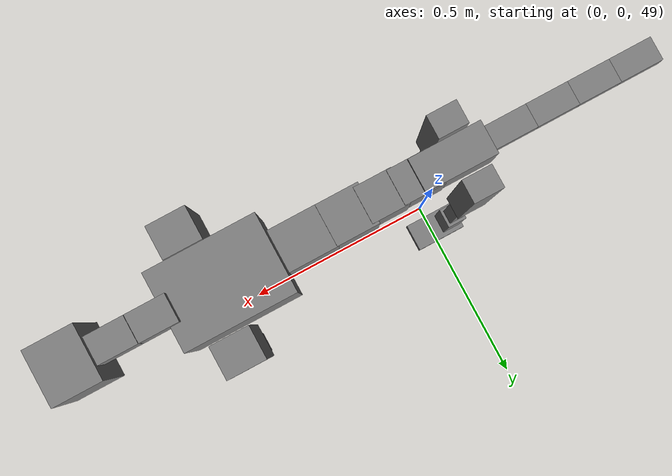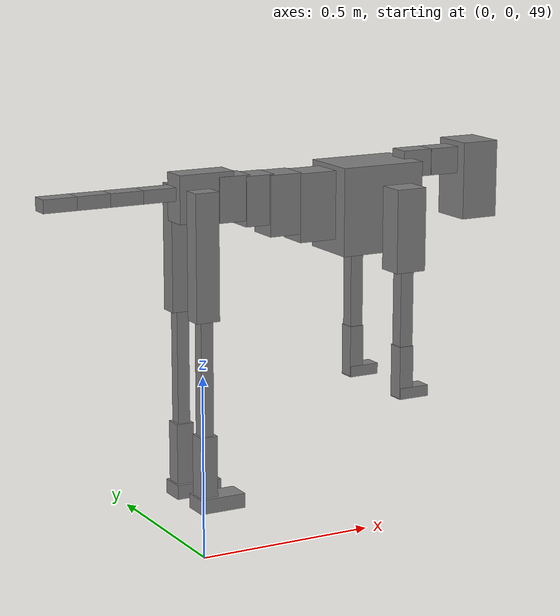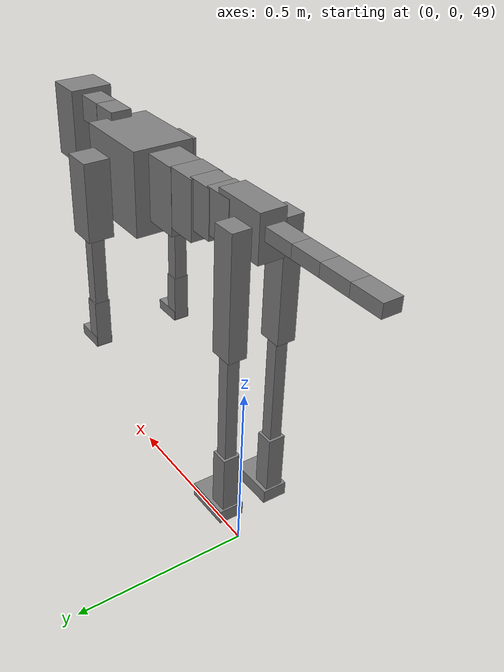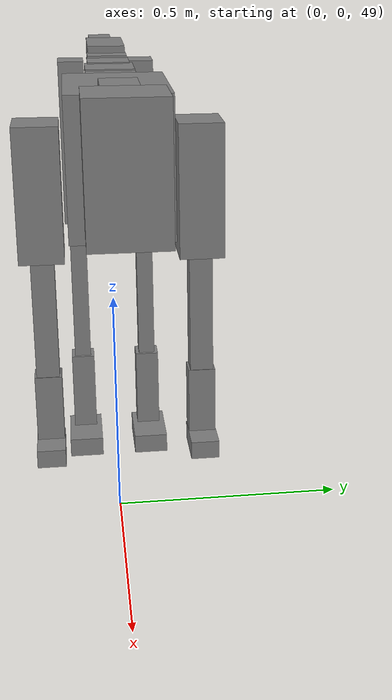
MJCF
<mujoco model="dog">

    <default>
        <joint armature="0.02" stiffness="1" damping="0.2" limited="true"/>
        <geom condim="3" friction="1 0.05 0.05" margin="0.01"/>
        <motor ctrllimited="true" ctrlrange="-1.0 1.0" forcelimited="true" gear="50"/>
    </default>

    <compiler inertiafromgeom="true" angle="radian"/>

    <option timestep="0.016" iterations="50" tolerance="1e-10" solver="Newton" jacobian="dense" cone="pyramidal"/>

    <size nconmax="20000" njmax="60000" nstack="5000000"/>
    <visual>
        <map force="0.1" zfar="30"/>
        <rgba haze="0.15 0.25 0.35 1"/>
        <quality shadowsize="2048"/>
        <global offwidth="800" offheight="800"/>
    </visual>

    <asset>
        <texture type="skybox" builtin="gradient" rgb1="0.3 0.5 0.7" rgb2="0 0 0" width="512" height="512"/>
        <texture name="texplane" type="2d" builtin="checker" rgb1=".2 .3 .4" rgb2=".1 0.15 0.2" width="512" height="512"
                 mark="cross" markrgb=".8 .8 .8"/>
        <texture name="texgeom" type="cube" builtin="flat" mark="cross" width="127" height="1278" rgb1="0.8 0.6 0.4"
                 rgb2="0.8 0.6 0.4" markrgb="1 1 1" random="0.01"/>

        <material name="matplane" reflectance="0.3" texture="texplane" texrepeat="1 1" texuniform="true"/>
        <material name="matgeom" texture="texgeom" texuniform="true" rgba="0.8 0.6 .4 1"/>
    </asset>

    <worldbody>
        <geom name="floor" pos="0 0 0" size="0 0 .25" type="plane" material="matplane" condim="3"/>

        <light directional="false" diffuse=".2 .2 .2" specular="0 0 0" pos="0 0 5" dir="0 0 -1" castshadow="false"/>
        <light mode="targetbodycom" target="torso" directional="false" diffuse=".8 .8 .8" specular="0.3 0.3 0.3"
               pos="0 0 4.0" dir="0 0 -1"/>

        <body name="root" pos="0 0 50">
            <freejoint name="root_1"/>
            <geom type="box" pos="0 0 -0.02" size="0.0774  0.0358  0.063" density="2030"/>

            <body name="spine1" pos="0.054 0 0">
                <joint name="spine1_y" axis="0 1 0" range="0 0.7" limited="true"/>
                <geom type="box" pos="0.02375 0 -0.03" size="0.04375  0.0375  0.05985" density="2030"/>

                <body name="spine2" pos="0.0612 0 0">
                    <joint name="spine2_y" axis="0 1 0" range="-0.15 0.15" limited="true"/>
                    <geom type="box" pos="0.03555  0  -0.04" size="0.04055  0.039  0.06615" density="2030"/>

                    <body name="spine3" pos="0.0730 0 0">
                        <joint name="spine3_y" axis="0 1 0" range="-0.15 0.15" limited="true"/>
                        <geom type="box" pos="0.03555  0  -0.057" size="0.04555  0.0445  0.081" density="2030"/>

                        <body name="spine4" pos="0.0780 0 0">
                            <joint name="spine4_y" axis="0 1 0" range="-0.15 0.15" limited="true"/>
                            <geom type="box" pos="0.05265  0  -0.07" size="0.05265  0.045  0.09135" density="2030"/>

                            <body name="torso" pos="0.1082 0 0">
                                <joint name="torso_y" axis="0 1 0" range="-0.15 0.15" limited="true"/>
                                <geom type="box" pos="0.11925  0  -0.085" size="0.11925  0.085  0.11745"
                                      density="2030"/>

                                <body name="neck1" pos="0.2160  0   0.0180">
                                    <joint name="neck1_y" axis="0 1 0" range="-1.2  -1" limited="true"/>
                                    <geom type="box" pos="0.0423  0  0" size="0.0423  0.03  0.036" density="2325"/>

                                    <body name="neck2" pos="0.0853  0  0">
                                        <joint name="neck2_y" axis="0 1 0" range="0.1  0" limited="true"/>
                                        <geom type="box" pos="0.0423  0  0" size="0.0423  0.03  0.036" density="2325"/>

                                        <body name="head" pos="0.0853  0  0">
                                            <joint name="head_y" axis="0 1 0" range="-0.3  -0.2" limited="true"/>
                                            <geom type="box" pos="0.0531  0  -0.055" size="0.0531  0.06  0.1044"
                                                  density="4030"/>

                                        </body>
                                    </body>
                                </body>

                                <body name="front_shoulder" pos="0.156  0   -0.0480">
                                    <joint name="front_shoulder_y" axis="0 1 0" range="-1 1.5" limited="true"/>
                                    <geom type="box" pos="0 0.13 -0.0847" size="0.0432  0.0369  0.1113" density="1158"/>
                                    <geom type="box" pos="0 -0.13 -0.0847" size="0.0432  0.0369  0.1113"
                                          density="1158"/>

                                    <body name="front_elbow" pos="0  0  -0.1693">
                                        <joint name="front_elbow_y" axis="0 1 0" range="-2 0" limited="true"/>
                                        <geom type="box" pos="0 0.13 -0.1222" size="0.0189  0.0194  0.1222"
                                              density="1081"/>
                                        <geom type="box" pos="0 -0.13 -0.1222" size="0.0189  0.0194  0.1222"
                                              density="1081"/>

                                        <body name="front_wrist" pos="0  0  -0.2445">
                                            <joint name="front_wrist_y" axis="0 1 0" range="-0.2 0" limited="true"/>
                                            <geom type="box" pos="0 0.13 -0.0578" size="0.0204  0.0227  0.0709"
                                                  density="1664"/>
                                            <geom type="box" pos="0 -0.13 -0.0578" size="0.0204  0.0227  0.0709"
                                                  density="1664"/>

                                            <body name="front_finger_end" pos="0  0  -0.1156">
                                                <joint name="front_finger_y" axis="0 1 0" range="-0.4 1"
                                                       limited="true"/>
                                                <geom type="box" pos="0.0238  0.13  -0.0002"
                                                      size="0.0435  0.0238  0.0152" density="1515"/>
                                                <geom type="box" pos="0.0238  -0.13  -0.0002"
                                                      size="0.0435  0.0238  0.0152" density="1515"/>

                                            </body>

                                        </body>
                                    </body>
                                </body>

                            </body>
                        </body>
                    </body>
                </body>
            </body>

            <body name="back_hip" pos="-0.03 0 -0.018">
                <joint name="back_hip_y" axis="0 1 0" range="-1.5 0.3" limited="true"/>
                <geom type="box" pos="0 0.07 -0.1449" size="0.0328  0.0257  0.1677" density="1154"/>
                <geom type="box" pos="0 -0.07 -0.1449" size="0.0328  0.0257  0.1677" density="1154"/>

                <body name="back_knee" pos="0  0  -0.2897">
                    <joint name="back_knee_y" axis="0 1 0" range="0 2.8" limited="true"/>
                    <geom type="box" pos="0 0.07 -0.1690" size="0.0173  0.0171  0.1846" density="1227"/>
                    <geom type="box" pos="0 -0.07 -0.1690" size="0.0173  0.0171  0.1846" density="1227"/>

                    <body name="back_ankle" pos="0  0  -0.3380">
                        <joint name="back_ankle_y" axis="0 1 0" range="-2.2 0" limited="true"/>
                        <geom type="box" pos="0 0.07 -0.0842" size="0.0241  0.0241  0.0954" density="1284"/>
                        <geom type="box" pos="0 -0.07 -0.0842" size="0.0241  0.0241  0.0954" density="1284"/>

                        <body name="back_toe_end" pos="0  0  -0.1683">
                            <joint name="back_toe_y" axis="0 1 0" range="-0.4 1" limited="true"/>
                            <geom type="box" pos="0.0349  0.07  -0.0045" size="0.0640  0.0349  0.0195" density="1515"/>
                            <geom type="box" pos="0.0349  -0.07  -0.0045" size="0.0640  0.0349  0.0195" density="1515"/>

                        </body>
                    </body>
                </body>
            </body>

            <body name="tail1" pos="-0.074 0 -0.006">
                <joint name="tail1_y" axis="0 1 0" range="-0.2 0.2" limited="true"/>
                <geom type="box" pos="-0.0536  0  0" size="0.045  0.025  0.0175" density="1587"/>

                <body name="tail2" pos="-0.09 0 0">
                    <joint name="tail2_y" axis="0 1 0" range="-0.2 0.2" limited="true"/>
                    <geom type="box" pos="-0.0536  0  0" size="0.045  0.025  0.0175" density="1587"/>

                    <body name="tail3" pos="-0.09 0 0">
                        <joint name="tail3_y" axis="0 1 0" range="-0.2 0.2" limited="true"/>
                        <geom type="box" pos="-0.0536  0  0" size="0.045  0.025  0.0175" density="1587"/>

                        <body name="tail4" pos="-0.09 0 0">
                            <joint name="tail4_y" axis="0 1 0" range="-0.2 0.2" limited="true"/>
                            <geom type="box" pos="-0.0536  0  0" size="0.045  0.025  0.0175" density="1587"/>

                        </body>
                    </body>
                </body>
            </body>
        </body>
    </worldbody>

    <actuator>
        <motor joint="spine1_y" forcerange="-150 150     "/>
        <motor joint="spine2_y" forcerange="-150 150     "/>
        <motor joint="spine3_y" forcerange="-150 150     "/>
        <motor joint="spine4_y" forcerange="-150 150     "/>
        <motor joint="torso_y" forcerange="-150 150     "/>
        <motor joint="neck1_y" forcerange="-100 100       "/>
        <motor joint="neck2_y" forcerange="-100 100       "/>
        <motor joint="head_y" forcerange="-150 150       "/>
        <motor joint="front_shoulder_y" forcerange="-176.29 169.71"/>
        <motor joint="front_elbow_y" forcerange="-140.44 100.36"/>
        <motor joint="front_wrist_y" forcerange="-119.60 61.70"/>
        <motor joint="front_finger_y" forcerange="-26.42 60.26"/>
        <motor joint="back_hip_y" forcerange="-227.75 314.96"/>
        <motor joint="back_knee_y" forcerange="-221.11 227.03"/>
        <motor joint="back_angle_y" forcerange="-96.54 188.89"/>
        <motor joint="back_toe_y" forcerange="-98.33 101.15"/>
        <motor joint="tail1_y" forcerange="-50 50     "/>
        <motor joint="tail2_y" forcerange="-50 50     "/>
        <motor joint="tail3_y" forcerange="-50 50     "/>
        <motor joint="tail4_y" forcerange="-50 50     "/>
    </actuator>
</mujoco>
